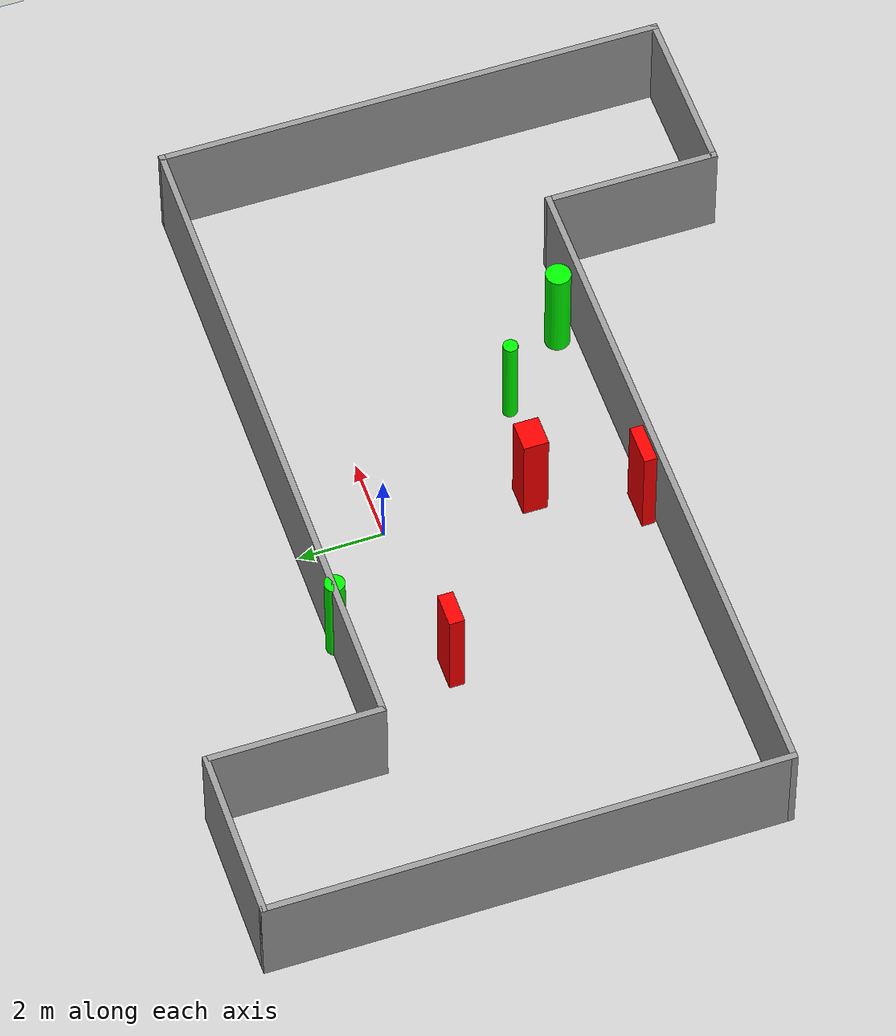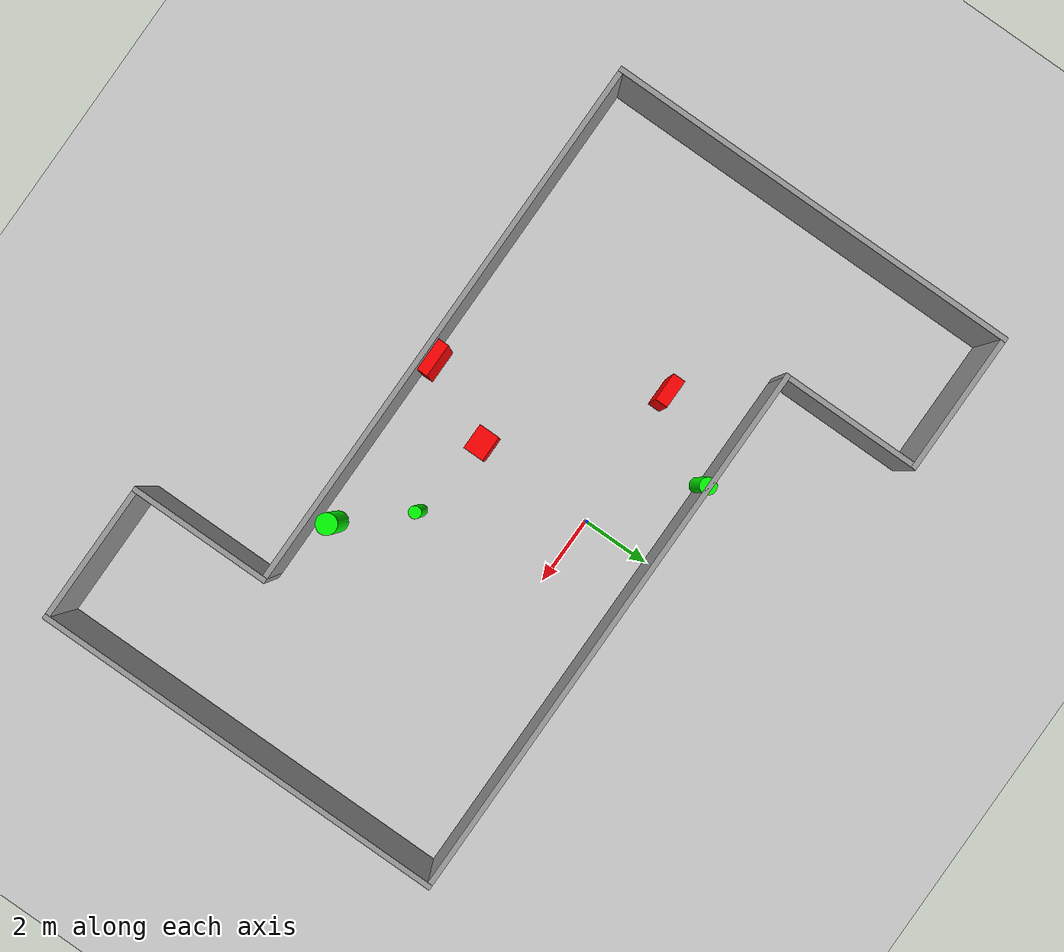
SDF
<sdf version="1.7">
 <world name="default">
  <light name="sun" type="directional">
   <pose>0 0 10 0 -0 0</pose>
   <diffuse>0.8 0.8 0.8 1</diffuse>
   <specular>0.2 0.2 0.2 1</specular>
   <attenuation>
    <range>1000</range>
    <constant>0.9</constant>
    <linear>0.01</linear>
    <quadratic>0.001</quadratic>
   </attenuation>
   <direction>-0.5 0.1 -0.9</direction>
   <spot><inner_angle>0</inner_angle><outer_angle>0</outer_angle><falloff>0</falloff></spot>
  </light>
  <model name="ground_plane">
   <static>1</static>
   <link name="link">
    <collision name="collision">
     <geometry><plane><normal>0 0 1</normal><size>100 100</size></plane></geometry>
     <surface>
      <contact><collide_bitmask>65535</collide_bitmask></contact>
      <friction><ode><mu>100</mu><mu2>50</mu2></ode></friction>
     </surface>
    </collision>
    <visual name="visual">
     <cast_shadows>0</cast_shadows>
     <geometry><plane><normal>0 0 1</normal><size>100 100</size></plane></geometry>
     <material>
      <script><uri>file://media/materials/scripts/gazebo.material</uri><name>Gazebo/Grey</name></script>
     </material>
    </visual>
   </link>
  </model>
  <gravity>0 0 -9.8</gravity>
  <magnetic_field>6e-06 2.3e-05 -4.2e-05</magnetic_field>
  <atmosphere type="adiabatic"/>
  <physics type="ode">
   <max_step_size>0.001</max_step_size>
   <real_time_factor>1</real_time_factor>
   <real_time_update_rate>1000</real_time_update_rate>
  </physics>
  <scene><ambient>0.4 0.4 0.4 1</ambient><background>0.7 0.7 0.7 1</background><shadows>1</shadows></scene>
  <spherical_coordinates>
   <surface_model>EARTH_WGS84</surface_model>
   <latitude_deg>0</latitude_deg>
   <longitude_deg>0</longitude_deg>
   <elevation>0</elevation>
   <heading_deg>0</heading_deg>
  </spherical_coordinates>
  <model name="my_base_walls">
   <link name="Wall_13">
    <collision name="Wall_13_Collision">
     <geometry><box><size>12.15 0.15 2.5</size></box></geometry>
     <pose>0 0 1.25 0 -0 0</pose>
    </collision>
    <visual name="Wall_13_Visual">
     <pose>0 0 1.25 0 -0 0</pose>
     <geometry><box><size>12.15 0.15 2.5</size></box></geometry>
     <material>
      <script><uri>file://media/materials/scripts/gazebo.material</uri><name>Gazebo/Grey</name></script>
      <ambient>1 1 1 1</ambient>
     </material>
     <meta><layer>0</layer></meta>
    </visual>
    <pose>10 -2 0 0 -0 1.5708</pose>
   </link>
   <link name="Wall_15">
    <collision name="Wall_15_Collision">
     <geometry><box><size>16.15 0.15 2.5</size></box></geometry>
     <pose>0 0 1.25 0 -0 0</pose>
    </collision>
    <visual name="Wall_15_Visual">
     <pose>0 0 1.25 0 -0 0</pose>
     <geometry><box><size>16.15 0.15 2.5</size></box></geometry>
     <material>
      <script><uri>file://media/materials/scripts/gazebo.material</uri><name>Gazebo/Grey</name></script>
      <ambient>1 1 1 1</ambient>
     </material>
     <meta><layer>0</layer></meta>
    </visual>
    <pose>2 4 0 0 -0 3.14159</pose>
   </link>
   <link name="Wall_17">
    <collision name="Wall_17_Collision">
     <geometry><box><size>4.15 0.15 2.5</size></box></geometry>
     <pose>0 0 1.25 0 -0 0</pose>
    </collision>
    <visual name="Wall_17_Visual">
     <pose>0 0 1.25 0 -0 0</pose>
     <geometry><box><size>4.15 0.15 2.5</size></box></geometry>
     <material>
      <script><uri>file://media/materials/scripts/gazebo.material</uri><name>Gazebo/Grey</name></script>
      <ambient>1 1 1 1</ambient>
     </material>
     <meta><layer>0</layer></meta>
    </visual>
    <pose>6 -6 0 0 -0 -1.5708</pose>
   </link>
   <link name="Wall_19">
    <collision name="Wall_19_Collision">
     <geometry><box><size>12.15 0.15 2.5</size></box></geometry>
     <pose>0 0 1.25 0 -0 0</pose>
    </collision>
    <visual name="Wall_19_Visual">
     <pose>0 0 1.25 0 -0 0</pose>
     <geometry><box><size>12.15 0.15 2.5</size></box></geometry>
     <material>
      <script><uri>file://media/materials/scripts/gazebo.material</uri><name>Gazebo/Grey</name></script>
      <ambient>1 1 1 1</ambient>
     </material>
     <meta><layer>0</layer></meta>
    </visual>
    <pose>-10 2 0 0 -0 1.5708</pose>
   </link>
   <link name="Wall_21">
    <collision name="Wall_21_Collision">
     <geometry><box><size>4.15 0.15 2.5</size></box></geometry>
     <pose>0 0 1.25 0 -0 0</pose>
    </collision>
    <visual name="Wall_21_Visual">
     <pose>0 0 1.25 0 -0 0</pose>
     <geometry><box><size>4.15 0.15 2.5</size></box></geometry>
     <material>
      <script><uri>file://media/materials/scripts/gazebo.material</uri><name>Gazebo/Grey</name></script>
      <ambient>1 1 1 1</ambient>
     </material>
     <meta><layer>0</layer></meta>
    </visual>
    <pose>-8 8 0 0 -0 0</pose>
   </link>
   <link name="Wall_23">
    <collision name="Wall_23_Collision">
     <geometry><box><size>4.15 0.15 2.5</size></box></geometry>
     <pose>0 0 1.25 0 -0 0</pose>
    </collision>
    <visual name="Wall_23_Visual">
     <pose>0 0 1.25 0 -0 0</pose>
     <geometry><box><size>4.15 0.15 2.5</size></box></geometry>
     <material>
      <script><uri>file://media/materials/scripts/gazebo.material</uri><name>Gazebo/Grey</name></script>
      <ambient>1 1 1 1</ambient>
     </material>
     <meta><layer>0</layer></meta>
    </visual>
    <pose>-6 6 0 0 -0 -1.5708</pose>
   </link>
   <link name="Wall_25">
    <collision name="Wall_25_Collision">
     <geometry><box><size>4.15 0.15 2.5</size></box></geometry>
     <pose>0 0 1.25 0 -0 0</pose>
    </collision>
    <visual name="Wall_25_Visual">
     <pose>0 0 1.25 0 -0 0</pose>
     <geometry><box><size>4.15 0.15 2.5</size></box></geometry>
     <material>
      <script><uri>file://media/materials/scripts/gazebo.material</uri><name>Gazebo/Grey</name></script>
      <ambient>1 1 1 1</ambient>
     </material>
     <meta><layer>0</layer></meta>
    </visual>
    <pose>8 -8 0 0 -0 0</pose>
   </link>
   <link name="Wall_9">
    <collision name="Wall_9_Collision">
     <geometry><box><size>16.15 0.15 2.5</size></box></geometry>
     <pose>0 0 1.25 0 -0 0</pose>
    </collision>
    <visual name="Wall_9_Visual">
     <pose>0 0 1.25 0 -0 0</pose>
     <geometry><box><size>16.15 0.15 2.5</size></box></geometry>
     <material>
      <script><uri>file://media/materials/scripts/gazebo.material</uri><name>Gazebo/Grey</name></script>
      <ambient>1 1 1 1</ambient>
     </material>
     <meta><layer>0</layer></meta>
    </visual>
    <pose>-2 -4 0 0 -0 3.14159</pose>
   </link>
   <static>1</static>
   <pose>-0 -2 0 0 -0 0</pose>
  </model>
  <model name="cylinder1">
   <static>1</static>
   <link name="link">
    <inertial>
     <mass>1</mass>
     <inertia><ixx>0.5</ixx><ixy>0</ixy><ixz>0</ixz><iyy>0.5</iyy><iyz>0</iyz><izz>1</izz></inertia>
    </inertial>
    <collision name="collision">
     <geometry><cylinder><radius>0.17377666552231205</radius><length>2.5</length></cylinder></geometry>
    </collision>
    <visual name="visual">
     <geometry><cylinder><radius>0.17377666552231205</radius><length>2.5</length></cylinder></geometry>
     <material>
      <ambient>0 1 0 1</ambient>
      <diffuse>0 1 0 1</diffuse>
      <specular>0.1 0.1 0.1 1</specular>
      <emissive>0 0 0 0</emissive>
     </material>
    </visual>
   </link>
   <pose>2.3467731755228556 -3.811252333659519 1.25 0 0 0</pose>
  </model>
  <model name="cylinder2">
   <static>1</static>
   <link name="link">
    <inertial>
     <mass>1</mass>
     <inertia><ixx>0.5</ixx><ixy>0</ixy><ixz>0</ixz><iyy>0.5</iyy><iyz>0</iyz><izz>1</izz></inertia>
    </inertial>
    <collision name="collision">
     <geometry><cylinder><radius>0.29713390468792633</radius><length>2.5</length></cylinder></geometry>
    </collision>
    <visual name="visual">
     <geometry><cylinder><radius>0.29713390468792633</radius><length>2.5</length></cylinder></geometry>
     <material>
      <ambient>0 1 0 1</ambient>
      <diffuse>0 1 0 1</diffuse>
      <specular>0.1 0.1 0.1 1</specular>
      <emissive>0 0 0 0</emissive>
     </material>
    </visual>
   </link>
   <pose>3.9010657526264065 -5.495379609461877 1.25 0 0 0</pose>
  </model>
  <model name="cylinder3">
   <static>1</static>
   <link name="link">
    <inertial>
     <mass>1</mass>
     <inertia><ixx>0.5</ixx><ixy>0</ixy><ixz>0</ixz><iyy>0.5</iyy><iyz>0</iyz><izz>1</izz></inertia>
    </inertial>
    <collision name="collision">
     <geometry><cylinder><radius>0.23520115977594735</radius><length>2.5</length></cylinder></geometry>
    </collision>
    <visual name="visual">
     <geometry><cylinder><radius>0.23520115977594735</radius><length>2.5</length></cylinder></geometry>
     <material>
      <ambient>0 1 0 1</ambient>
      <diffuse>0 1 0 1</diffuse>
      <specular>0.1 0.1 0.1 1</specular>
      <emissive>0 0 0 0</emissive>
     </material>
    </visual>
   </link>
   <pose>-2.5328309542474354 1.9559623401360335 1.25 0 0 0</pose>
  </model>
  <model name="box1">
   <static>1</static>
   <link name="link">
    <inertial>
     <mass>1</mass>
     <inertia><ixx>0.083</ixx><ixy>0</ixy><ixz>0</ixz><iyy>0.083</iyy><iyz>0</iyz><izz>0.083</izz></inertia>
    </inertial>
    <collision name="collision">
     <geometry><box><size>0.9647814740148724 0.3081806639741537 2.5</size></box></geometry>
    </collision>
    <visual name="visual">
     <geometry><box><size>0.9647814740148724 0.3081806639741537 2.5</size></box></geometry>
     <material>
      <ambient>1 0 0 1</ambient>
      <diffuse>1 0 0 1</diffuse>
      <specular>0.1 0.1 0.1 1</specular>
      <emissive>0 0 0 0</emissive>
     </material>
    </visual>
    <sensor name="my_contact" type="contact">
     <contact><collision>box_collision</collision><topic>__default_topic__</topic></contact>
    </sensor>
   </link>
   <pose>-1.1679510429236135 -5.725260484369263 1.25 0 0 0</pose>
  </model>
  <model name="box2">
   <static>1</static>
   <link name="link">
    <inertial>
     <mass>1</mass>
     <inertia><ixx>0.083</ixx><ixy>0</ixy><ixz>0</ixz><iyy>0.083</iyy><iyz>0</iyz><izz>0.083</izz></inertia>
    </inertial>
    <collision name="collision">
     <geometry><box><size>0.7325677281896454 0.5895533205738432 2.5</size></box></geometry>
    </collision>
    <visual name="visual">
     <geometry><box><size>0.7325677281896454 0.5895533205738432 2.5</size></box></geometry>
     <material>
      <ambient>1 0 0 1</ambient>
      <diffuse>1 0 0 1</diffuse>
      <specular>0.1 0.1 0.1 1</specular>
      <emissive>0 0 0 0</emissive>
     </material>
    </visual>
    <sensor name="my_contact" type="contact">
     <contact><collision>box_collision</collision><topic>__default_topic__</topic></contact>
    </sensor>
   </link>
   <pose>-0.09678375950182438 -3.4488167598943607 1.25 0 0 0</pose>
  </model>
  <model name="box3">
   <static>1</static>
   <link name="link">
    <inertial>
     <mass>1</mass>
     <inertia><ixx>0.083</ixx><ixy>0</ixy><ixz>0</ixz><iyy>0.083</iyy><iyz>0</iyz><izz>0.083</izz></inertia>
    </inertial>
    <collision name="collision">
     <geometry><box><size>0.808098910772548 0.3602883411902008 2.5</size></box></geometry>
    </collision>
    <visual name="visual">
     <geometry><box><size>0.808098910772548 0.3602883411902008 2.5</size></box></geometry>
     <material>
      <ambient>1 0 0 1</ambient>
      <diffuse>1 0 0 1</diffuse>
      <specular>0.1 0.1 0.1 1</specular>
      <emissive>0 0 0 0</emissive>
     </material>
    </visual>
    <sensor name="my_contact" type="contact">
     <contact><collision>box_collision</collision><topic>__default_topic__</topic></contact>
    </sensor>
   </link>
   <pose>-3.984650079812122 -0.24897504945674864 1.25 0 0 0</pose>
  </model>
 </world>
</sdf>
